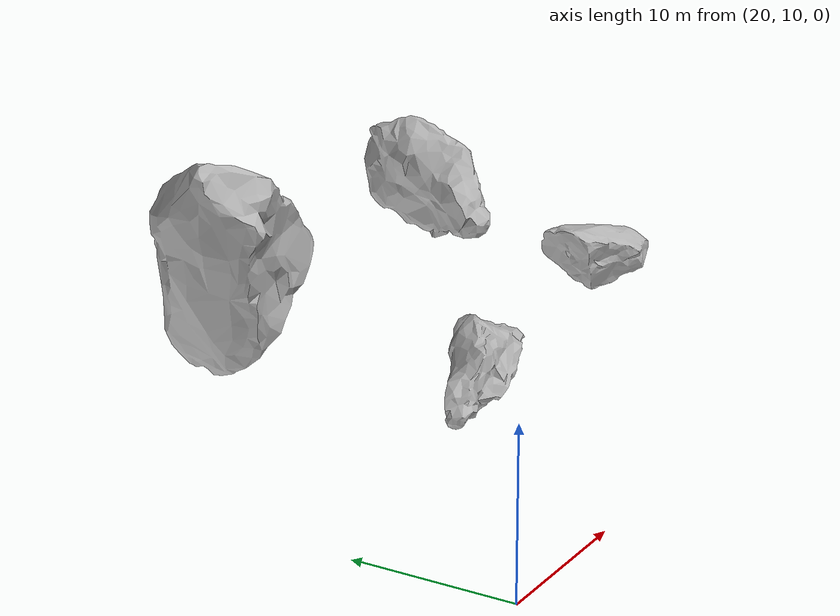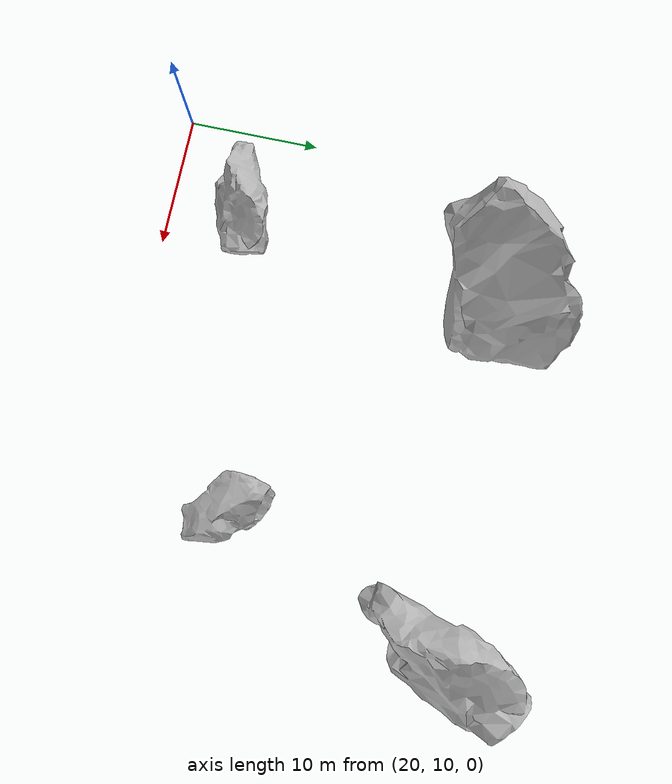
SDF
<?xml version="1.0" ?>
<sdf version="1.6">
  <model name="smars_rock_cluster">
    <static>true</static>

    <link name="rock2">
      <collision name="collision">
         <pose>0 0 0 0 0 1.570796</pose>
        <geometry>
          <mesh>
            <scale>1 1 1</scale>
            <uri>model://smars_rocks_giant_cluster/Smars_giantCluster.obj</uri>
          </mesh>
        </geometry>
      </collision>
      <visual name="visual">
         <pose>0 0 0 0 0 1.570796</pose>
        <geometry>
          <mesh>
            <scale>1 1 1</scale>
            <uri>model://smars_rocks_giant_cluster/Smars_giantCluster.obj</uri>
          </mesh>
        </geometry>
      </visual>
    </link>

  </model>
</sdf>
